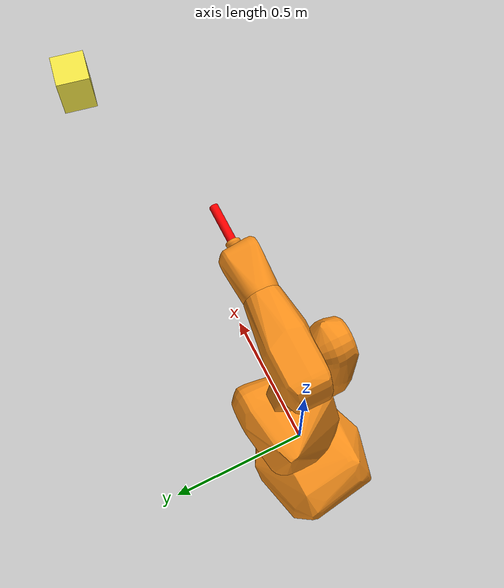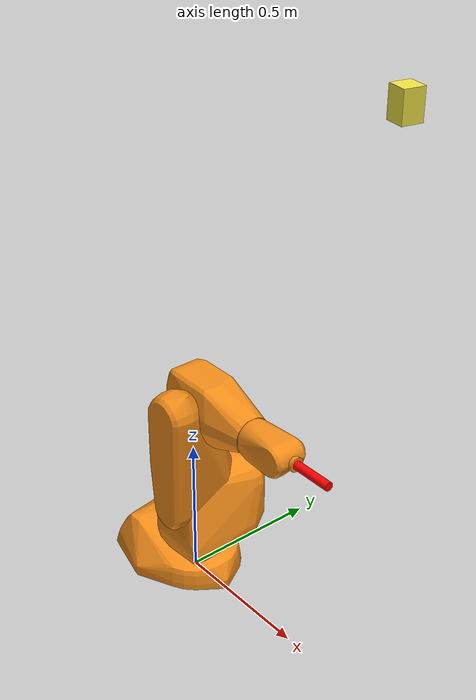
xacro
<?xml version="1.0"?>
<!-- Revolute-Revolute Manipulator -->
<robot name="irb140" xmlns:xacro="http://www.ros.org/wiki/xacro">

  <!-- Import all Gazebo-customization elements, including Gazebo colors -->
  <xacro:include filename="$(find irb140_description)/urdf/irb140.gazebo" />

  <!-- Import Rviz colors -->
  <xacro:include filename="$(find irb140_description)/urdf/materials.xacro" />

  <!-- Used for fixing robot to Gazebo 'base_link' -->
  <link name="world"/>

  <joint name="fixed" type="fixed">
    <parent link="world"/>
    <child link="base_link"/>
  </joint>

  <!-- also, define a flange frame consistent w/ DH and IK library; z-axis pointing out from flange -->
    <link name="flange_frame"/>

  <joint name="flange_frame_jnt" type="fixed">
    <parent link="link6"/>
    <child link="flange_frame"/>
    <origin xyz="0 0 0" rpy="0 1.5708 0"/>
  </joint>

  <link name="vacuum_gripper_link">
      <collision>
          <origin xyz="0 0 0.07" rpy="0 0 0"/>
          <geometry>
            <cylinder length="0.14" radius="0.015"/>
          </geometry>
      </collision>

      <visual>
          <origin xyz="0 0 0.07" rpy="0 0 0"/>
          <geometry>
            <cylinder length="0.14" radius="0.015"/>
          </geometry>
          <material name="vacuum_link_color">
              <color rgba="1 0 0 1.0"/>
          </material>
      </visual>

      <inertial>
          <mass value="0.01" />
          <origin xyz="0 0 0" rpy="0 0 0"/>
          <inertia ixx="0.01" ixy="0" ixz="0" iyy="0.01" iyz="0" izz="0.01" />
      </inertial>
  </link>

  <joint name="vacuum_gripper_jnt" type="fixed">
    <parent link="flange_frame"/>
    <child link="vacuum_gripper_link"/>
  </joint>

  <!-- Base Link -->
    <link name="base_link">
    <visual>
      <origin rpy="0 0 0" xyz="0 0 0"/>
      <geometry>
        <mesh filename="package://irb140_description/meshes/irb140/visual/base_link.stl" scale="0.01 0.01 0.01"/>
      </geometry>
    <material name="orange"/>

    </visual>

    <inertial>
      <origin xyz="0 0 0" rpy="0 0 0"/>
      <mass value="1"/>
      <inertia
	  ixx="1.0" ixy="0.0" ixz="0.0"
	  iyy="1.0" iyz="0.0"
	  izz="1.0"/>
    </inertial>
  </link>

  <link name="link1">
    <visual>
      <origin rpy="0 0 0" xyz="0 0 0"/>
      <geometry>
        <mesh filename="package://irb140_description/meshes/irb140/visual/link_1.stl" scale="0.01 0.01 0.01"/>
      </geometry>
     <material name="orange"/>
    </visual>
    <inertial>
      <origin xyz="0 0 0" rpy="0 0 0"/>
      <mass value="1"/>
      <inertia
	  ixx="1.0" ixy="0.0" ixz="0.0"
	  iyy="1.0" iyz="0.0"
	  izz="1.0"/>
    </inertial>
  </link>

  <link name="link2">
    <visual>
      <origin rpy="0 0 0" xyz="-0.07 0 -0.352"/>
      <geometry>
        <mesh filename="package://irb140_description/meshes/irb140/visual/link_2.stl" scale="0.01 0.01 0.01"/>
      </geometry>
     <material name="orange"/>
    </visual>

    <inertial>
      <origin xyz="0 0 -0.2" rpy="0 0 0"/>
      <mass value="1"/>
      <inertia
	  ixx="1.0" ixy="0.0" ixz="0.0"
	  iyy="1.0" iyz="0.0"
	  izz="1.0"/>
    </inertial>
  </link>

 <link name="link3">
    <visual>
      <origin rpy="0 0 0" xyz="-0.07 0.065 -0.712"/>
      <geometry>
        <mesh filename="package://irb140_description/meshes/irb140/visual/link_3.stl" scale="0.01 0.01 0.01"/>
      </geometry>
      <material name="orange"/>
    </visual>
    <inertial>
      <origin xyz="0 0 0" rpy="0 0 0"/>
      <mass value="1"/>
      <inertia
	  ixx="1.0" ixy="0.0" ixz="0.0"
	  iyy="1.0" iyz="0.0"
	  izz="1.0"/>
    </inertial>
  </link>

  <link name="link4">
    <visual>
      <origin rpy="0 0 0" xyz="-0.309 0 -0.712"/>
      <geometry>
        <mesh filename="package://irb140_description/meshes/irb140/visual/link_4.stl" scale="0.01 0.01 0.01"/>
      </geometry>
      <material name="orange"/>
    </visual>
    <inertial>
      <origin xyz="0 0 0" rpy="0 0 0"/>
      <mass value="1"/>
      <inertia
	  ixx="1.0" ixy="0.0" ixz="0.0"
	  iyy="1.0" iyz="0.0"
	  izz="1.0"/>
    </inertial>
  </link>

 <link name="link5">
    <visual>
      <origin rpy="0 0 0" xyz="-0.450 0 -0.712"/>
      <geometry>
        <mesh filename="package://irb140_description/meshes/irb140/visual/link_5.stl" scale="0.01 0.01 0.01"/>
      </geometry>
      <material name="orange"/>
    </visual>

    <inertial>
      <origin xyz="0 0 0" rpy="0 0 0"/>
      <mass value="1"/>
      <inertia
	  ixx="1.0" ixy="0.0" ixz="0.0"
	  iyy="1.0" iyz="0.0"
	  izz="1.0"/>
    </inertial>

  </link>

  <link name="link6">
    <visual>
      <origin rpy="0 0 0" xyz="-0.515 0 -0.712"/>
      <geometry>
        <mesh filename="package://irb140_description/meshes/irb140/visual/link_6.stl" scale="0.01 0.01 0.01"/>
      </geometry>
      <material name="orange"/>
    </visual>
    <inertial>
      <origin xyz="0 0 0" rpy="0 0 0"/>
      <mass value="1"/>
      <inertia
	  ixx="1.0" ixy="0.0" ixz="0.0"
	  iyy="1.0" iyz="0.0"
	  izz="1.0"/>
    </inertial>
  </link>

  <!--link name="tool0"/-->

  <joint name="joint_1" type="revolute">
    <parent link="base_link"/>
    <child link="link1"/>
    <origin xyz="0 0 0.0" rpy="0 0 0"/>
    <limit effort="100" lower="-3.1416" upper="3.1416" velocity="2.618"/>
    <axis xyz="0 0 1"/>
    <dynamics damping="0.7"/>
  </joint>

  <joint name="joint_2" type="revolute">
    <parent link="link1"/>
    <child link="link2"/>
    <origin rpy="0 0 0" xyz="0.070 0 0.352"/>
    <axis xyz="0 1 0"/>
    <limit effort="500" lower="-1.7453" upper="1.7453" velocity="2.618"/>
    <dynamics damping="1.7"/>
  </joint>

  <joint name="joint_3" type="revolute">
    <parent link="link2"/>
    <child link="link3"/>
    <origin rpy="0 0 0" xyz="0 -0.065 0.360"/>
    <axis xyz="0 1 0"/>
   <limit effort="100" lower="-3.49" upper="3.49" velocity="6.2832"/>
    <dynamics damping="1.7"/>
  </joint>

  <joint name="joint_4" type="revolute">
    <parent link="link3"/>
    <child link="link4"/>
    <origin rpy="0 0 0" xyz="0.239 0.065 0"/>
    <axis xyz="1 0 0"/>
    <limit effort="20" lower="-3.49" upper="3.49" velocity="6.2832"/>
    <dynamics damping="1.7"/>
  </joint>

 <joint name="joint_5" type="revolute">
    <parent link="link4"/>
    <child link="link5"/>
    <origin rpy="0 0 0" xyz="0.141 0 0"/>
    <axis xyz="0 1 0"/>
     <limit effort="20" lower="-2.0071" upper="2.0071" velocity="6.2832"/>
    <dynamics damping="1.7"/>
  </joint>

  <joint name="joint_6" type="revolute">
    <parent link="link5"/>
    <child link="link6"/>
    <origin rpy="0 0 0" xyz="0.065 0 0"/>
    <axis xyz="1 0 0"/>
     <limit effort="20" lower="-6.9813" upper="6.9813" velocity="7.854"/>
    <dynamics damping="0.7"/>
  </joint>

  <link name="cam_intermediate_link"/>
  <joint name="camera_joint" type="fixed">
      <parent link="world"/>
      <child link="cam_intermediate_link"/>
      <origin rpy="0.0 1.5708 1.5708" xyz="0.543 0.321 1.75"/>
  </joint>

    <joint name="cam_intermediate_joint" type="fixed">
      <parent link="cam_intermediate_link"/>
      <child link="camera_link"/>
      <origin rpy="0.2 0 0.0" xyz="0 0 0"/>
  </joint>

  <link name="camera_link">
    <visual>
      <origin xyz="0 0 0.0" rpy="0 0 0"/>
      <geometry>
        <box size="0.1 0.07 0.07"/>
      </geometry>
    </visual>

    <inertial>
      <mass value="1e-5" />
      <origin xyz="0 0 0" rpy="0 0 0"/>
      <inertia ixx="1e-6" ixy="0" ixz="0" iyy="1e-6" iyz="0" izz="1e-6" />
    </inertial>
  </link>

  <gazebo>
     <plugin name="joint_state_publisher" filename="libgazebo_ros_joint_state_publisher.so">
       <jointName>joint_1, joint_2, joint_3, joint_4, joint_5, joint_6 </jointName>
       <updateRate>100.0</updateRate>
     </plugin>
  </gazebo>

  <gazebo>
     <plugin name="gazebo_ros_control" filename="libgazebo_ros_control.so">
       <robotNamespace>/irb140</robotNamespace>
      <robotSimType>gazebo_ros_control/DefaultRobotHWSim</robotSimType>
     </plugin>
  </gazebo>

<transmission name="tran_1">
    <type>transmission_interface/SimpleTransmission</type>
    <joint name="joint_1">
       <hardwareInterface>PositionJointInterface</hardwareInterface>
    </joint>
    <actuator name="motor_1">
      <mechanicalReduction>1</mechanicalReduction>
      <hardwareInterface>PositionJointInterface</hardwareInterface>
    </actuator>
  </transmission>

 <transmission name="tran_2">
    <type>transmission_interface/SimpleTransmission</type>
    <joint name="joint_2">
      <hardwareInterface>PositionJointInterface</hardwareInterface>
    </joint>
    <actuator name="motor_2">
      <mechanicalReduction>1</mechanicalReduction>
    </actuator>
  </transmission>
  <transmission name="tran_3">
    <type>transmission_interface/SimpleTransmission</type>
    <joint name="joint_3">
      <hardwareInterface>PositionJointInterface</hardwareInterface>
    </joint>
    <actuator name="motor_3">
      <mechanicalReduction>1</mechanicalReduction>
    </actuator>
  </transmission>

    <transmission name="tran_4">
    <type>transmission_interface/SimpleTransmission</type>
    <joint name="joint_4">
      <hardwareInterface>PositionJointInterface</hardwareInterface>
    </joint>
    <actuator name="motor_4">
      <mechanicalReduction>1</mechanicalReduction>
    </actuator>
  </transmission>

    <transmission name="tran_5">
    <type>transmission_interface/SimpleTransmission</type>
    <joint name="joint_5">
      <hardwareInterface>PositionJointInterface</hardwareInterface>
    </joint>
    <actuator name="motor_5">
      <mechanicalReduction>1</mechanicalReduction>
    </actuator>
  </transmission>

    <transmission name="tran_6">
    <type>transmission_interface/SimpleTransmission</type>
    <joint name="joint_6">
      <hardwareInterface>PositionJointInterface</hardwareInterface>
    </joint>
    <actuator name="motor_6">
      <mechanicalReduction>1</mechanicalReduction>
    </actuator>
  </transmission>

<!--link6 is merged w/ vacuum_gripper_link due to fixed joint -->
 <gazebo>
  <plugin name="vacuum" filename="libsticky_fingers.so">
    <capacity>100.0</capacity>
    <link>irb140::link6</link>
  </plugin>
 </gazebo>

  <!--xacro:include filename="$(find irb140_description)/urdf/camera_model.xacro" /-->
 <!-- camera simulator plug-in -->
  <gazebo reference="camera_link">
    <sensor type="camera" name="camera">
      <update_rate>30.0</update_rate>
      <camera name="camera">
        <horizontal_fov>1</horizontal_fov>
        <image>
          <width>640</width>
          <height>480</height>
          <format>R8G8B8</format>
        </image>
        <clip>
          <near>0.005</near>
          <far>4</far>
        </clip>
        <noise>
          <type>gaussian</type>
          <mean>0.0</mean>
          <stddev>0.000</stddev>
        </noise>
      </camera>
      <plugin name="camera_controller" filename="libgazebo_ros_camera.so">
        <alwaysOn>true</alwaysOn>
        <updateRate>0.0</updateRate>
        <cameraName>simple_camera</cameraName>
        <imageTopicName>image_raw</imageTopicName>
        <cameraInfoTopicName>camera_info</cameraInfoTopicName>
        <frameName>camera_link</frameName>
        <distortionK1>0.0</distortionK1>
        <distortionK2>0.0</distortionK2>
        <distortionK3>0.0</distortionK3>
        <distortionT1>0.0</distortionT1>
        <distortionT2>0.0</distortionT2>
      </plugin>
    </sensor>
  </gazebo>
</robot>
